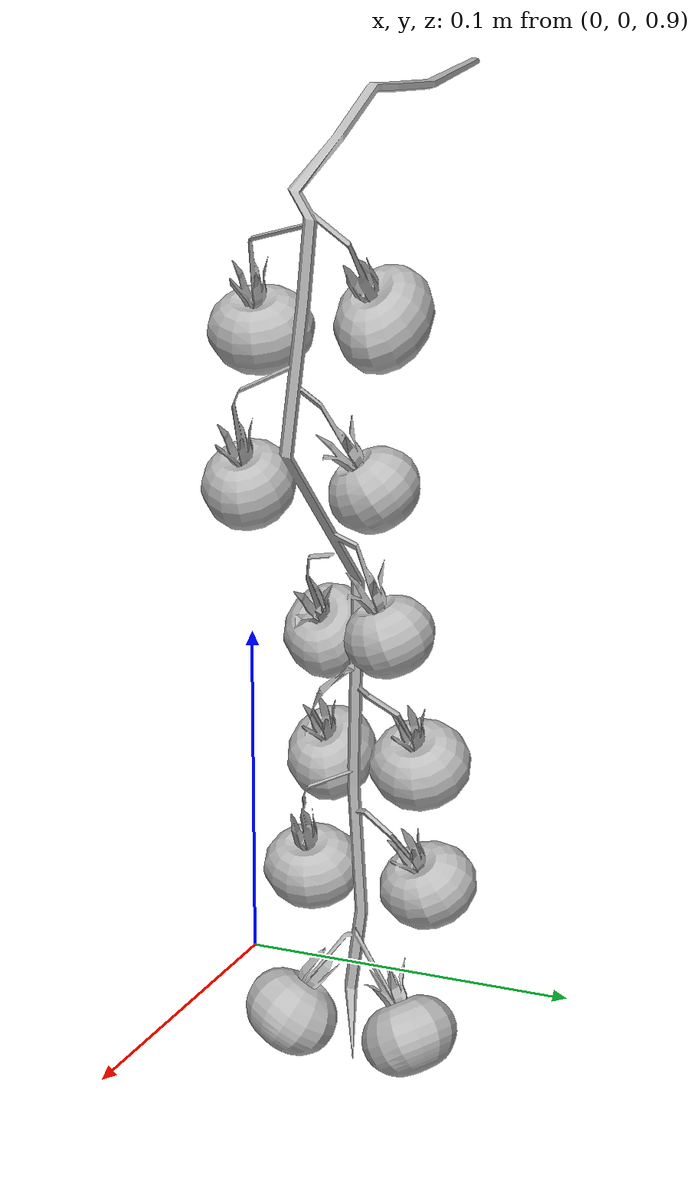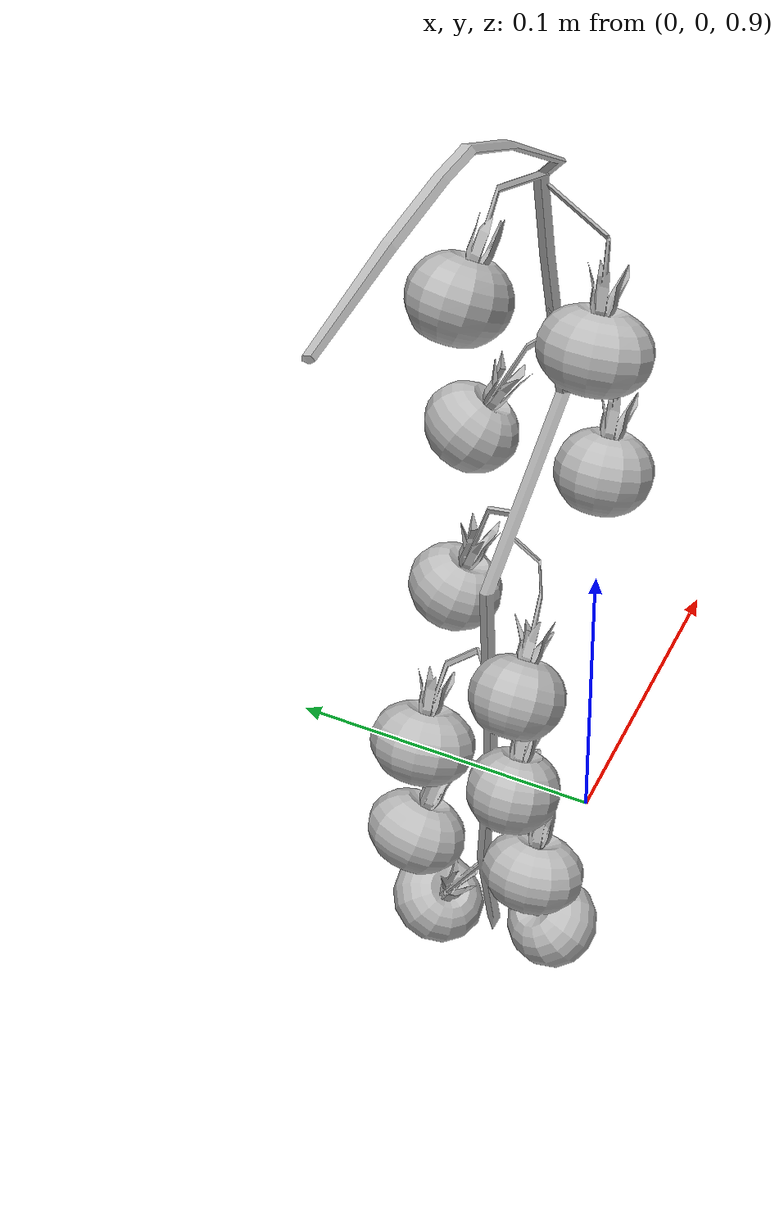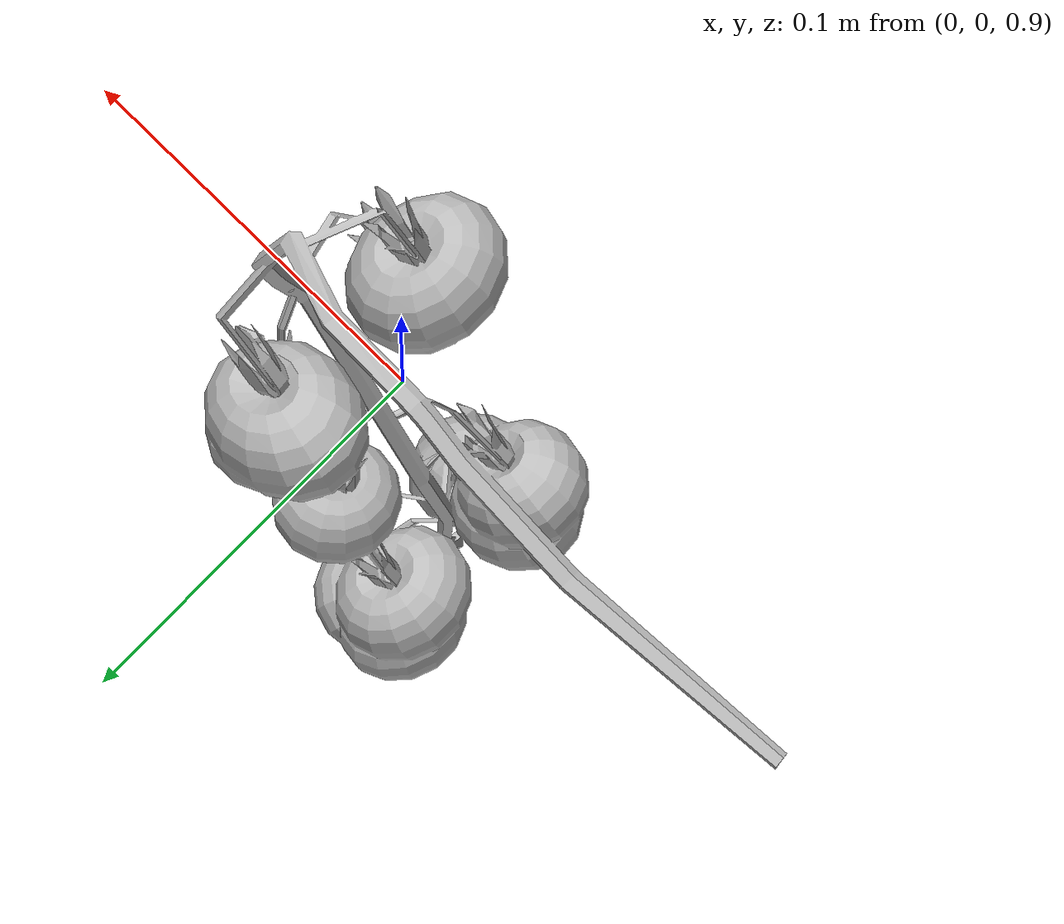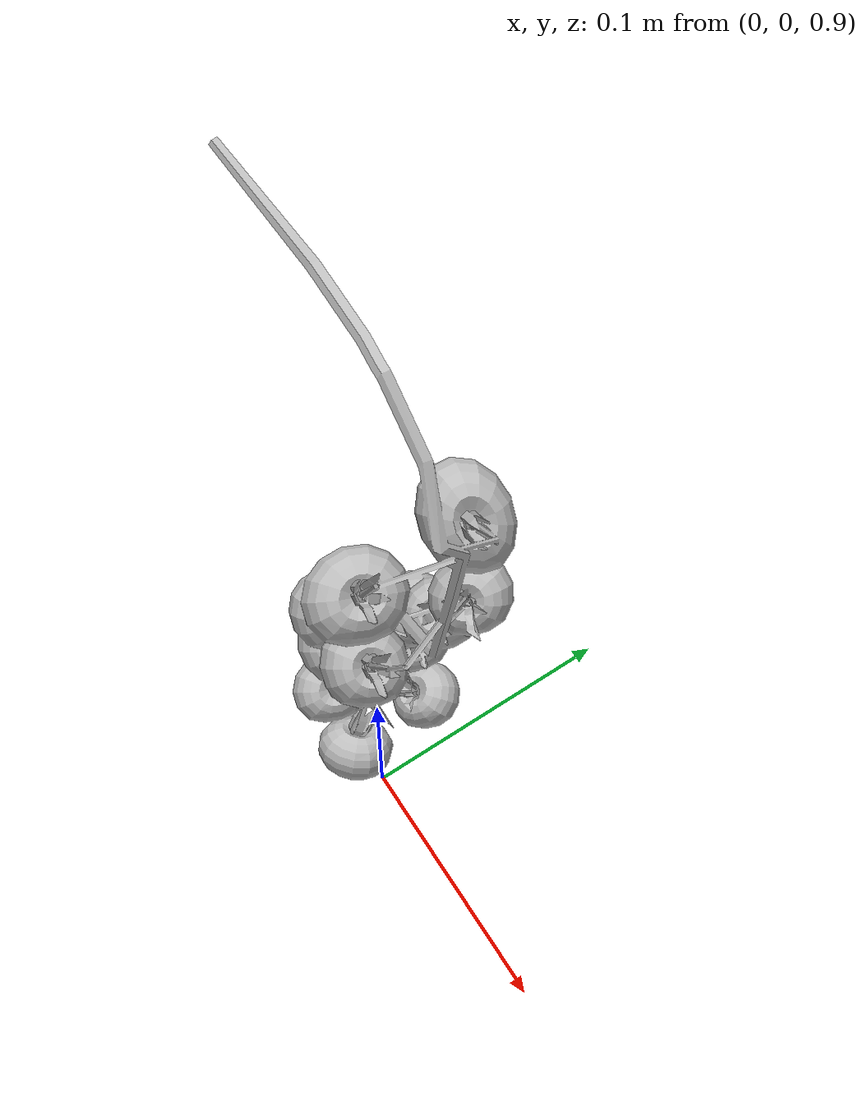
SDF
<?xml version="1.0"?>
<sdf version="1.6">
  <world name="trussverify">
    <include><uri>model://sun</uri></include>
    <include><uri>model://ground_plane</uri></include>
    <include><uri>model://tomato_truss_repo</uri><pose>0 0 0 0 0 0</pose></include>
    <model name="viewcam">
      <static>true</static>
      <pose>0.75 -0.55 1.0 0 0.05 2.2</pose>
      <link name="link">
        <sensor type="camera" name="cam">
          <update_rate>10</update_rate>
          <camera><horizontal_fov>0.9</horizontal_fov><image><width>640</width><height>480</height><format>R8G8B8</format></image><clip><near>0.05</near><far>30</far></clip></camera>
          <always_on>true</always_on><visualize>false</visualize>
          <plugin name="cam_ros" filename="libgazebo_ros_camera.so"><ros><namespace>/testcam</namespace></ros></plugin>
        </sensor>
      </link>
    </model>
  </world>
</sdf>

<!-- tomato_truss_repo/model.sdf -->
<sdf version="1.6">
  <model name="tomato_truss_repo">
    <static>true</static>
    <link name="link">
      <visual name="truss">
        <geometry>
          <mesh>
            <uri>model://tomato_truss_repo/meshes/tomato_truss_repo.dae</uri>
          </mesh>
        </geometry>
      </visual>
    </link>
  </model>
</sdf>
